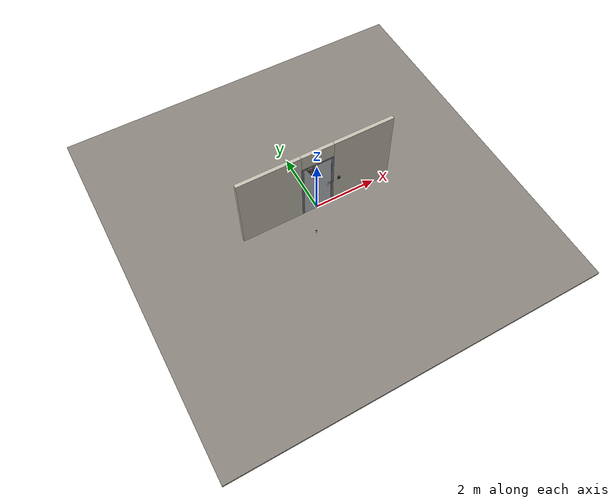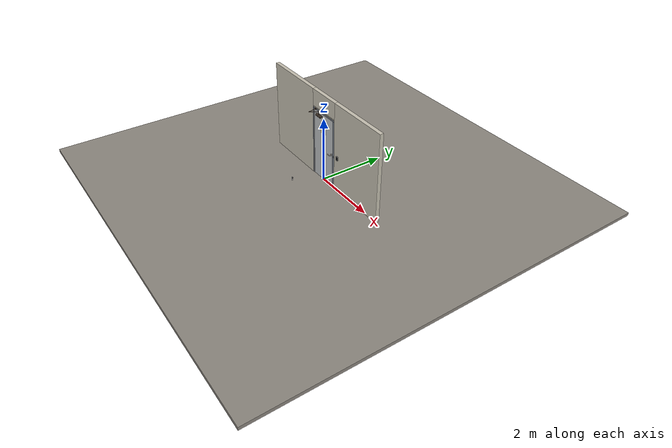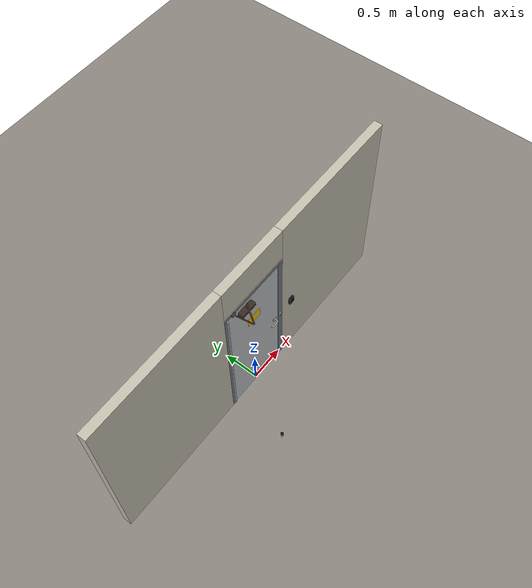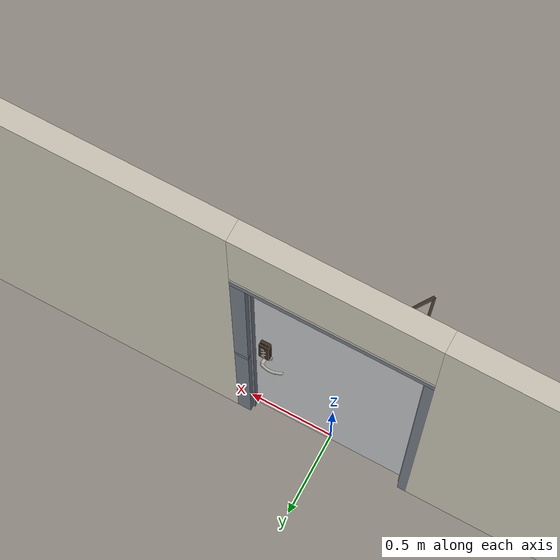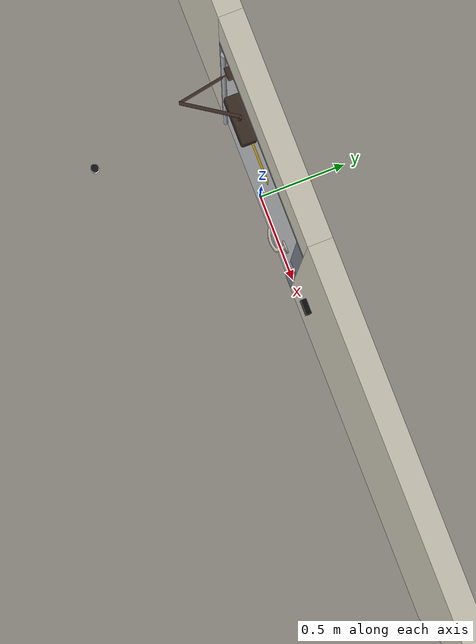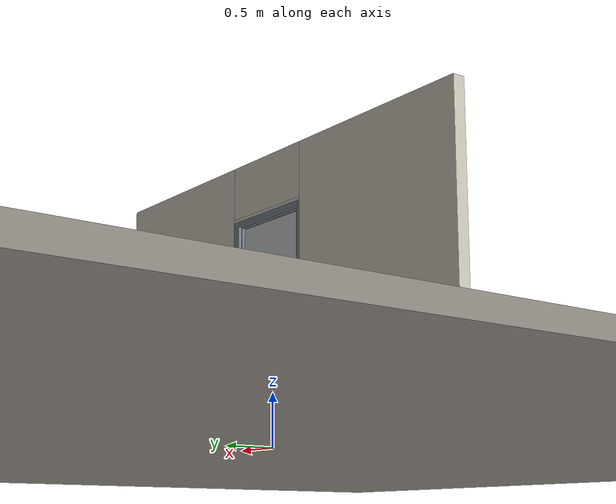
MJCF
<?xml version="1.0" ?>
<mujoco model="db0322_swing_single_full">
  <compiler angle="radian" meshdir="../../hardware" texturedir="../../textures" autolimits="true" inertiafromgeom="false"/>
  <option timestep="0.002" integrator="implicitfast" cone="elliptic" impratio="10" noslip_iterations="3">
    <flag multiccd="enable"/>
  </option>
  <size memory="16M"/>
  <default>
    <geom condim="4" solref="0.005 1" solimp="0.95 0.99 0.001"/>
    <joint solreflimit="0.005 1" solimplimit="0.95 0.99 0.001"/>
    <tendon solreflimit="0.005 1"/>
    <equality solref="0.002 1"/>
  </default>
  <visual>
    <headlight ambient="0.4 0.4 0.4" diffuse="0.7 0.7 0.7" specular="0.2 0.2 0.2"/>
    <quality shadowsize="4096"/>
    <map znear="0.01" zfar="60"/>
  </visual>
  <asset>
    <mesh name="closer_body_b226fdb10b" file="closer_body_b226fdb10b.obj"/>
    <mesh name="keypad_body_91eb8ded3e" file="keypad_body_91eb8ded3e.obj"/>
    <mesh name="lever_a61139b160" file="lever_a61139b160.obj"/>
    <material name="mat_floor" rgba="0.55 0.53 0.5 1" specular="0.2" shininess="0.15" reflectance="0"/>
    <material name="mat_wall" rgba="0.78 0.76 0.7 1" specular="0.2" shininess="0.1" reflectance="0"/>
    <material name="mat_leaf" rgba="0.75 0.76 0.77 1" specular="0.8" shininess="0.65" reflectance="0.4"/>
    <material name="mat_hinge" rgba="0.65 0.66 0.68 1" specular="0.74" shininess="0.5" reflectance="0.36"/>
    <material name="mat_op_nickel_satin" rgba="0.72 0.7 0.66 1" specular="0.8" shininess="0.65" reflectance="0.4"/>
    <material name="mat_trim" rgba="0.85 0.66 0.3 1" specular="0.8" shininess="0.75" reflectance="0.4"/>
    <material name="mat_keypad" rgba="0.22 0.17 0.13 1" specular="0.8" shininess="0.6" reflectance="0.4"/>
    <material name="mat_key" rgba="0.85 0.85 0.82 1" specular="0.2" shininess="0.5" reflectance="0"/>
    <material name="mat_bolt" rgba="0.85 0.66 0.3 1" specular="0.8" shininess="0.75" reflectance="0.4"/>
    <material name="mat_frame" rgba="0.45 0.48 0.52 1" specular="0.32" shininess="0.6" reflectance="0.08"/>
    <material name="mat_seal" rgba="0.1 0.1 0.1 1" specular="0.2" shininess="0.1" reflectance="0"/>
    <material name="mat_closer" rgba="0.22 0.17 0.13 1" specular="0.8" shininess="0.6" reflectance="0.4"/>
    <material name="mat_placard" rgba="0.95 0.75 0.05 1" specular="0.2" shininess="0.5" reflectance="0"/>
    <material name="mat_wallreader" rgba="0.05 0.05 0.05 1" specular="0.38" shininess="0.3" reflectance="0.12"/>
    <material name="mat_bumper_stop" rgba="0.08 0.08 0.08 1" specular="0.2" shininess="0.1" reflectance="0"/>
    <material name="mat_stop_base" rgba="0.9 0.9 0.92 1" specular="0.8" shininess="0.9" reflectance="0.4"/>
    <texture name="skybox" type="skybox" builtin="gradient" rgb1="0.6 0.7 0.85" rgb2="0.9 0.92 0.95" width="256" height="256"/>
  </asset>
  <worldbody>
    <light name="sun" pos="1.5 -2.5 4" dir="-0.3 0.5 -0.8" directional="true" diffuse="0.8 0.8 0.8" specular="0.3 0.3 0.3" castshadow="true"/>
    <light name="fill" pos="-1.5 2.5 3" dir="0.3 -0.5 -0.7" directional="true" diffuse="0.35 0.35 0.4" castshadow="false"/>
    <camera name="robot_view" pos="0 -2.609312 1.812087" xyaxes="1 0 0 0 0.26963 0.962964" fovy="52"/>
    <camera name="far_view" pos="0 2.666313 1.812087" xyaxes="-1 0 0 0 -0.26963 0.962964" fovy="52"/>
    <camera name="iso" pos="2.004737 -2.187262 2.234138" xyaxes="0.741536 0.670913 0 -0.242917 0.268487 0.932151" fovy="46"/>
    <camera name="detail_handle" pos="0.4769 -0.877 1.32" xyaxes="0.97561 0.219512 0 -0.070934 0.315262 0.94635" fovy="38"/>
    <geom name="floor" type="box" size="6 6 0.05" pos="0 0 -0.05" material="mat_floor" group="0" contype="1" conaffinity="1" friction="0.8 0.005 0.0001" density="2400"/>
    <geom name="wall_left" type="box" size="0.99475 0.0575 1.3735" pos="-1.50525 0.0285 1.3735" material="mat_wall" group="0" contype="1" conaffinity="1" friction="0.6 0.005 0.0001" density="800"/>
    <geom name="wall_right" type="box" size="0.97975 0.0575 1.3735" pos="1.52025 0.0285 1.3735" material="mat_wall" group="0" contype="1" conaffinity="1" friction="0.6 0.005 0.0001" density="800"/>
    <geom name="wall_header" type="box" size="0.5255 0.0575 0.26" pos="0.015 0.0285 2.487" material="mat_wall" group="0" contype="1" conaffinity="1" friction="0.6 0.005 0.0001" density="800"/>
    <geom name="jamb_hinge" type="box" size="0.025 0.0575 1.0735" pos="-0.4855 0.0285 1.0735" material="mat_frame" group="0" contype="1" conaffinity="1" friction="0.6 0.005 0.0001" density="300"/>
    <geom name="strike_1040_wall_n" type="box" size="0.04 0.03825 0.0183" pos="0.5005 0.04775 1.04" material="mat_frame" group="0" contype="1" conaffinity="1" friction="0.6 0.005 0.0001" density="300"/>
    <geom name="strike_1040_wall_p" type="box" size="0.04 0.008 0.0183" pos="0.5005 -0.0175 1.04" material="mat_frame" group="0" contype="1" conaffinity="1" friction="0.6 0.005 0.0001" density="300"/>
    <geom name="strike_1040_ramp" type="box" size="0.04 0.018028 0.0183" pos="0.503782 -0.018312 1.04" quat="0.957092 0 0 0.289784" material="mat_frame" group="0" contype="1" conaffinity="1" friction="0.12 0.005 0.0001" density="300"/>
    <geom name="strike_1040_back" type="box" size="0.0285 0.0095 0.0183" pos="0.512 0 1.04" material="mat_frame" group="0" contype="1" conaffinity="1" friction="0.6 0.005 0.0001" density="300"/>
    <geom name="jamb_strike_0" type="box" size="0.04 0.0575 0.51085" pos="0.5005 0.0285 0.51085" material="mat_frame" group="0" contype="1" conaffinity="1" friction="0.6 0.005 0.0001" density="300"/>
    <geom name="jamb_strike_1" type="box" size="0.04 0.0575 0.54435" pos="0.5005 0.0285 1.60265" material="mat_frame" group="0" contype="1" conaffinity="1" friction="0.6 0.005 0.0001" density="300"/>
    <geom name="jamb_head" type="box" size="0.5255 0.0575 0.025" pos="0.015 0.0285 2.172" material="mat_frame" group="0" contype="1" conaffinity="1" friction="0.6 0.005 0.0001" density="300"/>
    <geom name="head_stud" type="box" size="0.5255 0.0575 0.015" pos="0.015 0.0285 2.212" material="mat_wall" group="0" contype="1" conaffinity="1" friction="0.6 0.005 0.0001" density="500"/>
    <geom name="stop_hinge" type="box" size="0.0055 0.016 1.0735" pos="-0.455 0.0385 1.0735" material="mat_frame" group="0" contype="1" conaffinity="1" friction="0.6 0.005 0.0001" density="300"/>
    <geom name="stop_strike" type="box" size="0.0055 0.016 1.0735" pos="0.455 0.0385 1.0735" material="mat_frame" group="0" contype="1" conaffinity="1" friction="0.6 0.005 0.0001" density="300"/>
    <geom name="stop_head" type="box" size="0.4605 0.016 0.0055" pos="0 0.0385 2.1415" material="mat_frame" group="0" contype="1" conaffinity="1" friction="0.6 0.005 0.0001" density="300"/>
    <geom name="seal_hinge" type="box" size="0.004 0.0025 1.0735" pos="-0.4575 0.0245 1.0735" material="mat_seal" group="1" contype="0" conaffinity="0" density="1100"/>
    <geom name="seal_strike" type="box" size="0.004 0.0025 1.0735" pos="0.4575 0.0245 1.0735" material="mat_seal" group="1" contype="0" conaffinity="0" density="1100"/>
    <geom name="seal_head" type="box" size="0.4405 0.0025 0.008" pos="0 0.0245 2.135" material="mat_seal" group="1" contype="0" conaffinity="0" density="1100"/>
    <geom name="closer_bracket" type="box" size="0.03 0.012 0.014" pos="-0.3605 -0.041 2.177" material="mat_closer" group="1" contype="0" conaffinity="0" density="2700"/>
    <geom name="wall_reader" type="box" size="0.04 0.015 0.06" pos="0.7105 -0.044 1.1" material="mat_wallreader" group="0" contype="1" conaffinity="1" friction="0.6 0.005 0.0001" density="1000"/>
    <geom name="door_stop_base" type="cylinder" size="0.022 0.003" pos="-0.4735 -0.8059 0.003" material="mat_stop_base" group="0" contype="1" conaffinity="1" friction="0.6 0.005 0.0001" density="7850"/>
    <geom name="door_stop_post" type="cylinder" size="0.012 0.0245" pos="-0.4735 -0.8059 0.0305" material="mat_stop_base" group="0" contype="1" conaffinity="1" friction="0.6 0.005 0.0001" density="7850"/>
    <geom name="door_stop_bumper" type="cylinder" size="0.022 0.02" pos="-0.4735 -0.8059 0.075" material="mat_bumper_stop" group="0" contype="1" conaffinity="1" friction="0.6 0.005 0.0001" density="1100"/>
    <site name="approach_point" pos="0 -1.5 0" quat="1 0 0 0" size="0.05" rgba="0.2 0.9 0.2 0.5" group="4"/>
    <site name="goal_point" pos="0 1.5 0" quat="1 0 0 0" size="0.05" rgba="0.2 0.9 0.2 0.5" group="4"/>
    <site name="door_plane_center" pos="0 0 1.0735" quat="1 0 0 0" size="0.02" rgba="0.2 0.9 0.2 0.5" group="4"/>
    <body name="leaf" pos="-0.4605 0 0">
      <inertial pos="0.418468 -0.00942 1.208341" mass="56.283641" quat="-0.499037 0.480085 0.511918 0.50835" diaginertia="4.007432215 24.500370279 28.446163898"/>
      <joint name="leaf_hinge" type="hinge" axis="0 0 -1" pos="0.003 -0.029 0" limited="true" range="0 1.570796" solreflimit="0.02 1" damping="10.268966" frictionloss="3.225634" stiffness="13.171663" springref="-1.46223" armature="0.02"/>
      <geom name="leaf_slab" type="box" size="0.457 0.022 1.067" pos="0.46 0 1.076" material="mat_leaf" group="0" contype="1" conaffinity="1" friction="0.35 0.005 0.0001" density="1"/>
      <geom name="hinge_continuous" type="cylinder" size="0.0136 1.057" pos="0.003 -0.029 1.076" material="mat_hinge" group="1" contype="0" conaffinity="0" density="2700"/>
      <geom name="leaf_keypad_body" type="mesh" mesh="keypad_body_91eb8ded3e" pos="0.847 0.022 1.18" quat="0 0 0.707107 0.707107" material="mat_keypad" group="0" contype="1" conaffinity="1" friction="0.6 0.005 0.0001" density="2000"/>
      <geom name="leaf_keypad_cylinder" type="cylinder" size="0.009 0.002" pos="0.847 0.056 1.105" quat="0.707107 -0.707107 0 0" material="mat_trim" group="1" contype="0" conaffinity="0" density="7100"/>
      <geom name="leaf_latch_bolt_faceplate" type="box" size="0.0006 0.014 0.0283" pos="0.9164 0 1.04" material="mat_bolt" group="1" contype="0" conaffinity="0" density="8500"/>
      <geom name="closer_body" type="mesh" mesh="closer_body_b226fdb10b" pos="0.3 -0.022 2.054" quat="0.707107 0.707107 0 0" material="mat_closer" group="1" contype="0" conaffinity="0" density="2000"/>
      <geom name="closer_body_col" type="box" size="0.12 0.04 0.03" pos="0.3 -0.062 2.054" material="mat_closer" group="3" contype="1" conaffinity="1" rgba="0.8 0.3 0.3 0.25" friction="0.6 0.005 0.0001" density="2000"/>
      <geom name="closer_pinion_shaft" type="cylinder" size="0.008 0.0615" pos="0.3 -0.064 2.1155" material="mat_closer" group="1" contype="0" conaffinity="0" density="2700"/>
      <geom name="warning_placard" type="box" size="0.11 0.001 0.08" pos="0.46 -0.023 1.6095" material="mat_placard" group="2" contype="0" conaffinity="0" density="1000"/>
      <site name="leaf_edge_mid" pos="0.917 0 1.067" quat="1 0 0 0" size="0.02" rgba="0.2 0.9 0.2 0.5" group="4"/>
      <body name="leaf_handle" pos="0.847 0 1.04">
        <inertial pos="-0.022132 -0.050687 0" mass="0.463269" quat="-0.312008 0 0 0.950079" diaginertia="0.000227859 0.000847742 0.000992066"/>
        <joint name="leaf_handle_hinge" type="hinge" axis="0 -1 0" limited="true" range="0 0.87" damping="0.208392" frictionloss="0.052" stiffness="1" springref="-0.35" armature="0.01"/>
        <geom name="leaf_handle_spindle" type="cylinder" size="0.006 0.03" pos="0 0 0" quat="0.707107 -0.707107 0 0" material="mat_op_nickel_satin" group="1" contype="0" conaffinity="0" density="7850"/>
        <geom name="leaf_handle_lever_n" type="mesh" mesh="lever_a61139b160" pos="0 -0.022 0" quat="0.707107 0.707107 0 0" material="mat_op_nickel_satin" group="1" contype="0" conaffinity="0" density="3000"/>
        <geom name="leaf_handle_lever_col_n" type="capsule" size="0.008 0.048" pos="-0.056 -0.077 0" quat="0.707107 0 -0.707107 0" material="mat_op_nickel_satin" group="3" contype="1" conaffinity="1" rgba="0.8 0.3 0.3 0.25" friction="0.7 0.01 0.0001" density="3000"/>
        <geom name="leaf_handle_hub_col_n" type="cylinder" size="0.012 0.022" pos="0 -0.052 0" quat="0.707107 -0.707107 0 0" material="mat_op_nickel_satin" group="3" contype="1" conaffinity="1" rgba="0.8 0.3 0.3 0.25" friction="0.6 0.005 0.0001" density="3000"/>
        <site name="leaf_handle_grip_n" pos="-0.0896 -0.077 0" quat="1 0 0 0" size="0.012" rgba="0.2 0.9 0.2 0.5" group="4"/>
      </body>
      <body name="leaf_keypad_key_1" pos="0.853 0.054 1.232">
        <inertial pos="0 0.002 0" mass="0.001221" quat="0 0 0.707107 -0.707107" diaginertia="0.000000026 0.000000026 0.000000049"/>
        <joint name="leaf_keypad_key_1_slide" type="slide" axis="0 -1 0" limited="true" range="0 0.004" damping="17.146" frictionloss="0.05" stiffness="1500" springref="-0.004" armature="0.1"/>
        <geom name="leaf_keypad_key_1_geom" type="cylinder" size="0.009 0.002" pos="0 0.002 0" quat="0.707107 -0.707107 0 0" material="mat_key" group="0" contype="1" conaffinity="1" friction="0.6 0.005 0.0001" density="1200"/>
        <site name="leaf_keypad_key_1_press" pos="0 0.006 0" quat="1 0 0 0" size="0.008" rgba="0.2 0.9 0.2 0.5" group="4"/>
      </body>
      <body name="leaf_keypad_key_2" pos="0.841 0.054 1.206">
        <inertial pos="0 0.002 0" mass="0.001221" quat="0 0 0.707107 -0.707107" diaginertia="0.000000026 0.000000026 0.000000049"/>
        <joint name="leaf_keypad_key_2_slide" type="slide" axis="0 -1 0" limited="true" range="0 0.004" damping="17.146" frictionloss="0.05" stiffness="1500" springref="-0.004" armature="0.1"/>
        <geom name="leaf_keypad_key_2_geom" type="cylinder" size="0.009 0.002" pos="0 0.002 0" quat="0.707107 -0.707107 0 0" material="mat_key" group="0" contype="1" conaffinity="1" friction="0.6 0.005 0.0001" density="1200"/>
        <site name="leaf_keypad_key_2_press" pos="0 0.006 0" quat="1 0 0 0" size="0.008" rgba="0.2 0.9 0.2 0.5" group="4"/>
      </body>
      <body name="leaf_keypad_key_3" pos="0.853 0.054 1.18">
        <inertial pos="0 0.002 0" mass="0.001221" quat="0 0 0.707107 -0.707107" diaginertia="0.000000026 0.000000026 0.000000049"/>
        <joint name="leaf_keypad_key_3_slide" type="slide" axis="0 -1 0" limited="true" range="0 0.004" damping="17.146" frictionloss="0.05" stiffness="1500" springref="-0.004" armature="0.1"/>
        <geom name="leaf_keypad_key_3_geom" type="cylinder" size="0.009 0.002" pos="0 0.002 0" quat="0.707107 -0.707107 0 0" material="mat_key" group="0" contype="1" conaffinity="1" friction="0.6 0.005 0.0001" density="1200"/>
        <site name="leaf_keypad_key_3_press" pos="0 0.006 0" quat="1 0 0 0" size="0.008" rgba="0.2 0.9 0.2 0.5" group="4"/>
      </body>
      <body name="leaf_keypad_key_4" pos="0.841 0.054 1.154">
        <inertial pos="0 0.002 0" mass="0.001221" quat="0 0 0.707107 -0.707107" diaginertia="0.000000026 0.000000026 0.000000049"/>
        <joint name="leaf_keypad_key_4_slide" type="slide" axis="0 -1 0" limited="true" range="0 0.004" damping="17.146" frictionloss="0.05" stiffness="1500" springref="-0.004" armature="0.1"/>
        <geom name="leaf_keypad_key_4_geom" type="cylinder" size="0.009 0.002" pos="0 0.002 0" quat="0.707107 -0.707107 0 0" material="mat_key" group="0" contype="1" conaffinity="1" friction="0.6 0.005 0.0001" density="1200"/>
        <site name="leaf_keypad_key_4_press" pos="0 0.006 0" quat="1 0 0 0" size="0.008" rgba="0.2 0.9 0.2 0.5" group="4"/>
      </body>
      <body name="leaf_keypad_key_5" pos="0.853 0.054 1.128">
        <inertial pos="0 0.002 0" mass="0.001221" quat="0 0 0.707107 -0.707107" diaginertia="0.000000026 0.000000026 0.000000049"/>
        <joint name="leaf_keypad_key_5_slide" type="slide" axis="0 -1 0" limited="true" range="0 0.004" damping="17.146" frictionloss="0.05" stiffness="1500" springref="-0.004" armature="0.1"/>
        <geom name="leaf_keypad_key_5_geom" type="cylinder" size="0.009 0.002" pos="0 0.002 0" quat="0.707107 -0.707107 0 0" material="mat_key" group="0" contype="1" conaffinity="1" friction="0.6 0.005 0.0001" density="1200"/>
        <site name="leaf_keypad_key_5_press" pos="0 0.006 0" quat="1 0 0 0" size="0.008" rgba="0.2 0.9 0.2 0.5" group="4"/>
      </body>
      <body name="leaf_handle_out" pos="0.847 0 1.04">
        <inertial pos="-0.025007 0.057273 0" mass="0.41" quat="0.235955 0 0 0.971764" diaginertia="0.000156759 0.000717302 0.000791484"/>
        <joint name="leaf_handle_out_hinge" type="hinge" axis="0 -1 0" limited="true" range="0 0.06" damping="0.208382" frictionloss="0.052" stiffness="1" springref="-0.35" armature="0.01"/>
        <geom name="leaf_handle_out_lever_p" type="mesh" mesh="lever_a61139b160" pos="0 0.022 0" quat="-0.707107 0.707107 0 0" material="mat_op_nickel_satin" group="1" contype="0" conaffinity="0" density="3000"/>
        <geom name="leaf_handle_out_lever_col_p" type="capsule" size="0.008 0.048" pos="-0.056 0.077 0" quat="0.707107 0 -0.707107 0" material="mat_op_nickel_satin" group="3" contype="1" conaffinity="1" rgba="0.8 0.3 0.3 0.25" friction="0.7 0.01 0.0001" density="3000"/>
        <geom name="leaf_handle_out_hub_col_p" type="cylinder" size="0.012 0.022" pos="0 0.052 0" quat="0.707107 -0.707107 0 0" material="mat_op_nickel_satin" group="3" contype="1" conaffinity="1" rgba="0.8 0.3 0.3 0.25" friction="0.6 0.005 0.0001" density="3000"/>
        <site name="leaf_handle_out_grip_p" pos="-0.0896 0.077 0" quat="1 0 0 0" size="0.012" rgba="0.2 0.9 0.2 0.5" group="4"/>
      </body>
      <body name="leaf_latch_bolt" pos="0.917 0 1.04">
        <inertial pos="-0.0055 0 0" mass="0.074627" quat="0.92388 -0.382683 0 0" diaginertia="0.000002271 0.000013255 0.000013255"/>
        <joint name="leaf_latch_bolt_slide" type="slide" axis="-1 0 0" limited="true" range="0 0.019" damping="2" frictionloss="0.3" stiffness="600" springref="-0.01" armature="0.1"/>
        <geom name="leaf_latch_bolt_capsule" type="capsule" size="0.008 0.0165" pos="-0.0055 0 0" quat="0.707107 0 0.707107 0" material="mat_bolt" group="0" contype="1" conaffinity="1" friction="0.2 0.005 0.0001" density="8500"/>
      </body>
      <body name="closer_arm_main" pos="0.3 -0.064 2.177" quat="0.472212 0 0 -0.881485">
        <inertial pos="0.14 0 0" mass="0.12096" quat="1 0 0 0" diaginertia="0.000003588 0.00079128 0.000792852"/>
        <joint name="closer_pinion" type="hinge" axis="0 0 1" limited="false" damping="0.01" armature="0.002"/>
        <geom name="closer_arm_main_geom" type="box" size="0.14 0.008 0.005" pos="0.14 0 0" material="mat_closer" group="1" contype="0" conaffinity="0" density="2700"/>
        <body name="closer_arm_fore" pos="0.28 0 0" quat="-0.371222 0 0 0.928544">
          <inertial pos="0.128088 0 0" mass="0.076531" quat="1 0 0 0" diaginertia="0.000001771 0.000437665 0.000438201"/>
          <joint name="closer_elbow" type="hinge" axis="0 0 1" limited="false" damping="0.01" armature="0.002"/>
          <geom name="closer_arm_fore_geom" type="box" size="0.1125 0.007 0.004" pos="0.1125 0 0" material="mat_closer" group="1" contype="0" conaffinity="0" density="2700"/>
          <geom name="closer_fore_neck" type="box" size="0.0175 0.003 0.003" pos="0.2425 0 0" material="mat_closer" group="1" contype="0" conaffinity="0" density="2700"/>
          <geom name="closer_fore_pivot" type="cylinder" size="0.005 0.012" pos="0.26 0 0" material="mat_closer" group="1" contype="0" conaffinity="0" density="2700"/>
        </body>
      </body>
    </body>
  </worldbody>
  <tendon>
    <fixed name="leaf_latch_bolt_coupling" limited="true" range="0 10">
      <joint joint="leaf_latch_bolt_slide" coef="1"/>
      <joint joint="leaf_handle_hinge" coef="-0.023457"/>
      <joint joint="leaf_handle_out_hinge" coef="-0.023457"/>
    </fixed>
  </tendon>
  <equality>
    <connect name="closer_arm_connect" body1="closer_arm_fore" body2="world" anchor="0.26 0 0" active="true"/>
  </equality>
  <contact>
    <exclude body1="closer_arm_main" body2="leaf"/>
    <exclude body1="closer_arm_fore" body2="leaf"/>
    <exclude body1="closer_arm_main" body2="closer_arm_fore"/>
  </contact>
  <sensor>
    <jointpos name="leaf_hinge_pos" joint="leaf_hinge"/>
    <jointvel name="leaf_hinge_vel" joint="leaf_hinge"/>
    <jointpos name="leaf_handle_hinge_pos" joint="leaf_handle_hinge"/>
    <jointvel name="leaf_handle_hinge_vel" joint="leaf_handle_hinge"/>
    <jointpos name="leaf_keypad_key_1_slide_pos" joint="leaf_keypad_key_1_slide"/>
    <jointvel name="leaf_keypad_key_1_slide_vel" joint="leaf_keypad_key_1_slide"/>
    <jointpos name="leaf_keypad_key_2_slide_pos" joint="leaf_keypad_key_2_slide"/>
    <jointvel name="leaf_keypad_key_2_slide_vel" joint="leaf_keypad_key_2_slide"/>
    <jointpos name="leaf_keypad_key_3_slide_pos" joint="leaf_keypad_key_3_slide"/>
    <jointvel name="leaf_keypad_key_3_slide_vel" joint="leaf_keypad_key_3_slide"/>
    <jointpos name="leaf_keypad_key_4_slide_pos" joint="leaf_keypad_key_4_slide"/>
    <jointvel name="leaf_keypad_key_4_slide_vel" joint="leaf_keypad_key_4_slide"/>
    <jointpos name="leaf_keypad_key_5_slide_pos" joint="leaf_keypad_key_5_slide"/>
    <jointvel name="leaf_keypad_key_5_slide_vel" joint="leaf_keypad_key_5_slide"/>
    <jointpos name="leaf_handle_out_hinge_pos" joint="leaf_handle_out_hinge"/>
    <jointvel name="leaf_handle_out_hinge_vel" joint="leaf_handle_out_hinge"/>
    <jointpos name="leaf_latch_bolt_slide_pos" joint="leaf_latch_bolt_slide"/>
    <jointvel name="leaf_latch_bolt_slide_vel" joint="leaf_latch_bolt_slide"/>
  </sensor>
</mujoco>
